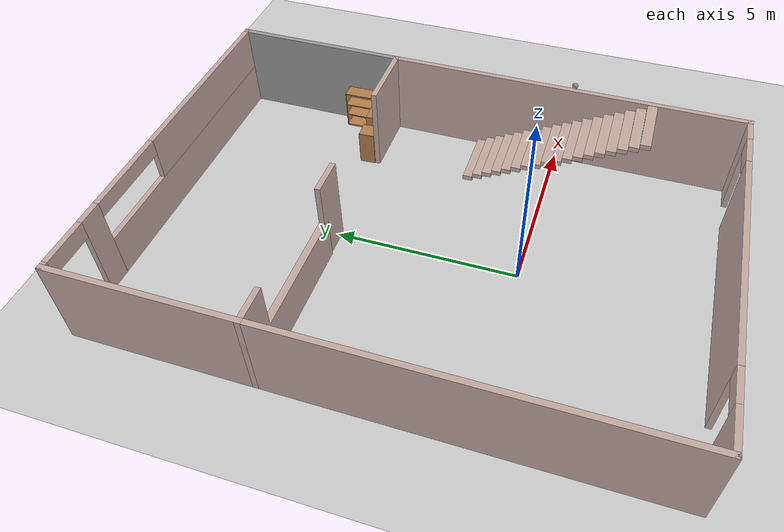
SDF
<sdf version="1.6">
 <world name="default">
  <model name="ground_plane">
   <static>1</static>
   <link name="link">
    <collision name="collision">
     <geometry><plane><normal>0 0 1</normal><size>100 100</size></plane></geometry>
     <surface>
      <contact><collide_bitmask>65535</collide_bitmask></contact>
      <friction><ode><mu>100</mu><mu2>50</mu2></ode></friction>
     </surface>
    </collision>
    <visual name="visual">
     <cast_shadows>0</cast_shadows>
     <geometry><plane><normal>0 0 1</normal><size>100 100</size></plane></geometry>
     <material>
      <script><uri>file://media/materials/scripts/gazebo.material</uri><name>Gazebo/Grey</name></script>
     </material>
    </visual>
   </link>
  </model>
  <model name="Living_room">
   <pose>0 2.425 0 0 -0 0</pose>
   <link name="Stairs_2">
    <visual name="Stairs_2_Visual_0">
     <pose>4.04837 -0.186051 0.069444 0 -0 0</pose>
     <geometry><box><size>1.735 0.275167 0.138889</size></box></geometry>
     <material>
      <script><uri>file://media/materials/scripts/gazebo.material</uri><name>Gazebo/Grey</name></script>
      <ambient>0.760784 0.662745 0.627451 1</ambient>
     </material>
     <meta><layer>0</layer></meta>
    </visual>
    <collision name="Stairs_2_Collision_0">
     <geometry><box><size>1.735 0.275167 0.138889</size></box></geometry>
     <pose>4.04837 -0.186051 0.069444 0 -0 0</pose>
    </collision>
    <visual name="Stairs_2_Visual_1">
     <pose>4.04837 -0.461218 0.208333 0 -0 0</pose>
     <geometry><box><size>1.735 0.275167 0.138889</size></box></geometry>
     <material>
      <script><uri>file://media/materials/scripts/gazebo.material</uri><name>Gazebo/Grey</name></script>
      <ambient>0.760784 0.662745 0.627451 1</ambient>
     </material>
     <meta><layer>0</layer></meta>
    </visual>
    <collision name="Stairs_2_Collision_1">
     <geometry><box><size>1.735 0.275167 0.138889</size></box></geometry>
     <pose>4.04837 -0.461218 0.208333 0 -0 0</pose>
    </collision>
    <visual name="Stairs_2_Visual_2">
     <pose>4.04837 -0.736385 0.347222 0 -0 0</pose>
     <geometry><box><size>1.735 0.275167 0.138889</size></box></geometry>
     <material>
      <script><uri>file://media/materials/scripts/gazebo.material</uri><name>Gazebo/Grey</name></script>
      <ambient>0.760784 0.662745 0.627451 1</ambient>
     </material>
     <meta><layer>0</layer></meta>
    </visual>
    <collision name="Stairs_2_Collision_2">
     <geometry><box><size>1.735 0.275167 0.138889</size></box></geometry>
     <pose>4.04837 -0.736385 0.347222 0 -0 0</pose>
    </collision>
    <visual name="Stairs_2_Visual_3">
     <pose>4.04837 -1.01155 0.486111 0 -0 0</pose>
     <geometry><box><size>1.735 0.275167 0.138889</size></box></geometry>
     <material>
      <script><uri>file://media/materials/scripts/gazebo.material</uri><name>Gazebo/Grey</name></script>
      <ambient>0.760784 0.662745 0.627451 1</ambient>
     </material>
     <meta><layer>0</layer></meta>
    </visual>
    <collision name="Stairs_2_Collision_3">
     <geometry><box><size>1.735 0.275167 0.138889</size></box></geometry>
     <pose>4.04837 -1.01155 0.486111 0 -0 0</pose>
    </collision>
    <visual name="Stairs_2_Visual_4">
     <pose>4.04837 -1.28672 0.625 0 -0 0</pose>
     <geometry><box><size>1.735 0.275167 0.138889</size></box></geometry>
     <material>
      <script><uri>file://media/materials/scripts/gazebo.material</uri><name>Gazebo/Grey</name></script>
      <ambient>0.760784 0.662745 0.627451 1</ambient>
     </material>
     <meta><layer>0</layer></meta>
    </visual>
    <collision name="Stairs_2_Collision_4">
     <geometry><box><size>1.735 0.275167 0.138889</size></box></geometry>
     <pose>4.04837 -1.28672 0.625 0 -0 0</pose>
    </collision>
    <visual name="Stairs_2_Visual_5">
     <pose>4.04837 -1.56188 0.763889 0 -0 0</pose>
     <geometry><box><size>1.735 0.275167 0.138889</size></box></geometry>
     <material>
      <script><uri>file://media/materials/scripts/gazebo.material</uri><name>Gazebo/Grey</name></script>
      <ambient>0.760784 0.662745 0.627451 1</ambient>
     </material>
     <meta><layer>0</layer></meta>
    </visual>
    <collision name="Stairs_2_Collision_5">
     <geometry><box><size>1.735 0.275167 0.138889</size></box></geometry>
     <pose>4.04837 -1.56188 0.763889 0 -0 0</pose>
    </collision>
    <visual name="Stairs_2_Visual_6">
     <pose>4.04837 -1.83705 0.902778 0 -0 0</pose>
     <geometry><box><size>1.735 0.275167 0.138889</size></box></geometry>
     <material>
      <script><uri>file://media/materials/scripts/gazebo.material</uri><name>Gazebo/Grey</name></script>
      <ambient>0.760784 0.662745 0.627451 1</ambient>
     </material>
     <meta><layer>0</layer></meta>
    </visual>
    <collision name="Stairs_2_Collision_6">
     <geometry><box><size>1.735 0.275167 0.138889</size></box></geometry>
     <pose>4.04837 -1.83705 0.902778 0 -0 0</pose>
    </collision>
    <visual name="Stairs_2_Visual_7">
     <pose>4.04837 -2.11222 1.04167 0 -0 0</pose>
     <geometry><box><size>1.735 0.275167 0.138889</size></box></geometry>
     <material>
      <script><uri>file://media/materials/scripts/gazebo.material</uri><name>Gazebo/Grey</name></script>
      <ambient>0.760784 0.662745 0.627451 1</ambient>
     </material>
     <meta><layer>0</layer></meta>
    </visual>
    <collision name="Stairs_2_Collision_7">
     <geometry><box><size>1.735 0.275167 0.138889</size></box></geometry>
     <pose>4.04837 -2.11222 1.04167 0 -0 0</pose>
    </collision>
    <visual name="Stairs_2_Visual_8">
     <pose>4.04837 -2.38739 1.18056 0 -0 0</pose>
     <geometry><box><size>1.735 0.275167 0.138889</size></box></geometry>
     <material>
      <script><uri>file://media/materials/scripts/gazebo.material</uri><name>Gazebo/Grey</name></script>
      <ambient>0.760784 0.662745 0.627451 1</ambient>
     </material>
     <meta><layer>0</layer></meta>
    </visual>
    <collision name="Stairs_2_Collision_8">
     <geometry><box><size>1.735 0.275167 0.138889</size></box></geometry>
     <pose>4.04837 -2.38739 1.18056 0 -0 0</pose>
    </collision>
    <visual name="Stairs_2_Visual_9">
     <pose>4.04837 -2.66255 1.31944 0 -0 0</pose>
     <geometry><box><size>1.735 0.275167 0.138889</size></box></geometry>
     <material>
      <script><uri>file://media/materials/scripts/gazebo.material</uri><name>Gazebo/Grey</name></script>
      <ambient>0.760784 0.662745 0.627451 1</ambient>
     </material>
     <meta><layer>0</layer></meta>
    </visual>
    <collision name="Stairs_2_Collision_9">
     <geometry><box><size>1.735 0.275167 0.138889</size></box></geometry>
     <pose>4.04837 -2.66255 1.31944 0 -0 0</pose>
    </collision>
    <visual name="Stairs_2_Visual_10">
     <pose>4.04837 -2.93772 1.45833 0 -0 0</pose>
     <geometry><box><size>1.735 0.275167 0.138889</size></box></geometry>
     <material>
      <script><uri>file://media/materials/scripts/gazebo.material</uri><name>Gazebo/Grey</name></script>
      <ambient>0.760784 0.662745 0.627451 1</ambient>
     </material>
     <meta><layer>0</layer></meta>
    </visual>
    <collision name="Stairs_2_Collision_10">
     <geometry><box><size>1.735 0.275167 0.138889</size></box></geometry>
     <pose>4.04837 -2.93772 1.45833 0 -0 0</pose>
    </collision>
    <visual name="Stairs_2_Visual_11">
     <pose>4.04837 -3.21288 1.59722 0 -0 0</pose>
     <geometry><box><size>1.735 0.275167 0.138889</size></box></geometry>
     <material>
      <script><uri>file://media/materials/scripts/gazebo.material</uri><name>Gazebo/Grey</name></script>
      <ambient>0.760784 0.662745 0.627451 1</ambient>
     </material>
     <meta><layer>0</layer></meta>
    </visual>
    <collision name="Stairs_2_Collision_11">
     <geometry><box><size>1.735 0.275167 0.138889</size></box></geometry>
     <pose>4.04837 -3.21288 1.59722 0 -0 0</pose>
    </collision>
    <visual name="Stairs_2_Visual_12">
     <pose>4.04837 -3.48805 1.73611 0 -0 0</pose>
     <geometry><box><size>1.735 0.275167 0.138889</size></box></geometry>
     <material>
      <script><uri>file://media/materials/scripts/gazebo.material</uri><name>Gazebo/Grey</name></script>
      <ambient>0.760784 0.662745 0.627451 1</ambient>
     </material>
     <meta><layer>0</layer></meta>
    </visual>
    <collision name="Stairs_2_Collision_12">
     <geometry><box><size>1.735 0.275167 0.138889</size></box></geometry>
     <pose>4.04837 -3.48805 1.73611 0 -0 0</pose>
    </collision>
    <visual name="Stairs_2_Visual_13">
     <pose>4.04837 -3.76322 1.875 0 -0 0</pose>
     <geometry><box><size>1.735 0.275167 0.138889</size></box></geometry>
     <material>
      <script><uri>file://media/materials/scripts/gazebo.material</uri><name>Gazebo/Grey</name></script>
      <ambient>0.760784 0.662745 0.627451 1</ambient>
     </material>
     <meta><layer>0</layer></meta>
    </visual>
    <collision name="Stairs_2_Collision_13">
     <geometry><box><size>1.735 0.275167 0.138889</size></box></geometry>
     <pose>4.04837 -3.76322 1.875 0 -0 0</pose>
    </collision>
    <visual name="Stairs_2_Visual_14">
     <pose>4.04837 -4.03838 2.01389 0 -0 0</pose>
     <geometry><box><size>1.735 0.275167 0.138889</size></box></geometry>
     <material>
      <script><uri>file://media/materials/scripts/gazebo.material</uri><name>Gazebo/Grey</name></script>
      <ambient>0.760784 0.662745 0.627451 1</ambient>
     </material>
     <meta><layer>0</layer></meta>
    </visual>
    <collision name="Stairs_2_Collision_14">
     <geometry><box><size>1.735 0.275167 0.138889</size></box></geometry>
     <pose>4.04837 -4.03838 2.01389 0 -0 0</pose>
    </collision>
    <visual name="Stairs_2_Visual_15">
     <pose>4.04837 -4.31355 2.15278 0 -0 0</pose>
     <geometry><box><size>1.735 0.275167 0.138889</size></box></geometry>
     <material>
      <script><uri>file://media/materials/scripts/gazebo.material</uri><name>Gazebo/Grey</name></script>
      <ambient>0.760784 0.662745 0.627451 1</ambient>
     </material>
     <meta><layer>0</layer></meta>
    </visual>
    <collision name="Stairs_2_Collision_15">
     <geometry><box><size>1.735 0.275167 0.138889</size></box></geometry>
     <pose>4.04837 -4.31355 2.15278 0 -0 0</pose>
    </collision>
    <visual name="Stairs_2_Visual_16">
     <pose>4.04837 -4.58872 2.29167 0 -0 0</pose>
     <geometry><box><size>1.735 0.275167 0.138889</size></box></geometry>
     <material>
      <script><uri>file://media/materials/scripts/gazebo.material</uri><name>Gazebo/Grey</name></script>
      <ambient>0.760784 0.662745 0.627451 1</ambient>
     </material>
     <meta><layer>0</layer></meta>
    </visual>
    <collision name="Stairs_2_Collision_16">
     <geometry><box><size>1.735 0.275167 0.138889</size></box></geometry>
     <pose>4.04837 -4.58872 2.29167 0 -0 0</pose>
    </collision>
    <visual name="Stairs_2_Visual_17">
     <pose>4.04837 -4.86388 2.43056 0 -0 0</pose>
     <geometry><box><size>1.735 0.275167 0.138889</size></box></geometry>
     <material>
      <script><uri>file://media/materials/scripts/gazebo.material</uri><name>Gazebo/Grey</name></script>
      <ambient>0.760784 0.662745 0.627451 1</ambient>
     </material>
     <meta><layer>0</layer></meta>
    </visual>
    <collision name="Stairs_2_Collision_17">
     <geometry><box><size>1.735 0.275167 0.138889</size></box></geometry>
     <pose>4.04837 -4.86388 2.43056 0 -0 0</pose>
    </collision>
   </link>
   <link name="Wall_10">
    <collision name="Wall_10_Collision">
     <geometry><box><size>3.55 0.2 1.25</size></box></geometry>
     <pose>0 0 0.625 0 -0 0</pose>
    </collision>
    <visual name="Wall_10_Visual">
     <pose>0 0 0.625 0 -0 0</pose>
     <geometry><box><size>3.55 0.2 1.25</size></box></geometry>
     <material>
      <script><uri>file://media/materials/scripts/gazebo.material</uri><name>Gazebo/Grey</name></script>
      <ambient>0.760784 0.662745 0.627451 1</ambient>
     </material>
     <meta><layer>0</layer></meta>
    </visual>
    <pose>-2.475 2.575 0 0 -0 0</pose>
   </link>
   <link name="Wall_11">
    <collision name="Wall_11_Collision">
     <geometry><box><size>1 0.15 2.5</size></box></geometry>
     <pose>0 0 1.25 0 -0 0</pose>
    </collision>
    <visual name="Wall_11_Visual">
     <pose>0 0 1.25 0 -0 0</pose>
     <geometry><box><size>1 0.15 2.5</size></box></geometry>
     <material>
      <script><uri>file://media/materials/scripts/gazebo.material</uri><name>Gazebo/Grey</name></script>
      <ambient>0.760784 0.662745 0.627451 1</ambient>
     </material>
     <meta><layer>0</layer></meta>
    </visual>
    <pose>-0.375 2.575 0 0 -0 0</pose>
   </link>
   <link name="Wall_18">
    <collision name="Wall_18_Collision">
     <geometry><box><size>2 0.15 2.5</size></box></geometry>
     <pose>0 0 1.25 0 -0 0</pose>
    </collision>
    <visual name="Wall_18_Visual">
     <pose>0 0 1.25 0 -0 0</pose>
     <geometry><box><size>2 0.15 2.5</size></box></geometry>
     <material>
      <script><uri>file://media/materials/scripts/gazebo.material</uri><name>Gazebo/Grey</name></script>
      <ambient>0.760784 0.662745 0.627451 1</ambient>
     </material>
     <meta><layer>0</layer></meta>
    </visual>
    <pose>4.075 2.575 0 0 -0 3.14159</pose>
   </link>
   <link name="Wall_2">
    <collision name="Wall_2_Collision">
     <geometry><box><size>10.15 0.15 2.5</size></box></geometry>
     <pose>0 0 1.25 0 -0 0</pose>
    </collision>
    <visual name="Wall_2_Visual">
     <pose>0 0 1.25 0 -0 0</pose>
     <geometry><box><size>10.15 0.15 2.5</size></box></geometry>
     <material>
      <script><uri>file://media/materials/scripts/gazebo.material</uri><name>Gazebo/Grey</name></script>
      <ambient>0.760784 0.662745 0.627451 1</ambient>
     </material>
     <meta><layer>0</layer></meta>
    </visual>
    <pose>-5 -2.425 0 0 0 -1.5708</pose>
   </link>
   <link name="Wall_20">
    <collision name="Wall_20_Collision">
     <geometry><box><size>5 0.15 2.5</size></box></geometry>
     <pose>0 0 1.25 0 -0 0</pose>
    </collision>
    <visual name="Wall_20_Visual">
     <pose>0 0 1.25 0 -0 0</pose>
     <geometry><box><size>5 0.15 2.5</size></box></geometry>
     <material>
      <script><uri>file://media/materials/scripts/gazebo.material</uri><name>Gazebo/Grey</name></script>
      <ambient>1 1 1 1</ambient>
     </material>
     <meta><layer>0</layer></meta>
    </visual>
    <pose>5 5 0 0 -0 1.5708</pose>
   </link>
   <link name="Wall_24">
    <collision name="Wall_24_Collision">
     <geometry><box><size>5 0.15 2.5</size></box></geometry>
     <pose>0 0 1.25 0 -0 0</pose>
    </collision>
    <visual name="Wall_24_Visual">
     <pose>0 0 1.25 0 -0 0</pose>
     <geometry><box><size>5 0.15 2.5</size></box></geometry>
     <material>
      <script><uri>file://media/materials/scripts/gazebo.material</uri><name>Gazebo/Grey</name></script>
      <ambient>0.760784 0.662745 0.627451 1</ambient>
     </material>
     <meta><layer>0</layer></meta>
    </visual>
    <pose>-5 5 0 0 -0 1.5708</pose>
   </link>
   <link name="Wall_28">
    <pose>0 7.425 0 0 -0 0</pose>
    <visual name="Wall_28_Visual_0">
     <pose>-4.96565 0 1.25 0 -0 0</pose>
     <geometry><box><size>0.218693 0.15 2.5</size></box></geometry>
     <material>
      <script><uri>file://media/materials/scripts/gazebo.material</uri><name>Gazebo/Grey</name></script>
      <ambient>0.760784 0.662745 0.627451 1</ambient>
     </material>
     <meta><layer>0</layer></meta>
    </visual>
    <collision name="Wall_28_Collision_0">
     <geometry><box><size>0.218693 0.15 2.5</size></box></geometry>
     <pose>-4.96565 0 1.25 0 -0 0</pose>
    </collision>
    <visual name="Wall_28_Visual_1">
     <pose>-3.23794 0 1.25 0 -0 0</pose>
     <geometry><box><size>0.662798 0.15 2.5</size></box></geometry>
     <material>
      <script><uri>file://media/materials/scripts/gazebo.material</uri><name>Gazebo/Grey</name></script>
      <ambient>0.760784 0.662745 0.627451 1</ambient>
     </material>
     <meta><layer>0</layer></meta>
    </visual>
    <collision name="Wall_28_Collision_1">
     <geometry><box><size>0.662798 0.15 2.5</size></box></geometry>
     <pose>-3.23794 0 1.25 0 -0 0</pose>
    </collision>
    <visual name="Wall_28_Visual_2">
     <pose>1.08423 0 0.625 0 -0 0</pose>
     <geometry><box><size>7.98154 0.15 1.25</size></box></geometry>
     <material>
      <script><uri>file://media/materials/scripts/gazebo.material</uri><name>Gazebo/Grey</name></script>
      <ambient>0.760784 0.662745 0.627451 1</ambient>
     </material>
     <meta><layer>0</layer></meta>
    </visual>
    <collision name="Wall_28_Collision_2">
     <geometry><box><size>7.98154 0.15 1.25</size></box></geometry>
     <pose>1.08423 0 0.625 0 -0 0</pose>
    </collision>
    <visual name="Wall_28_Visual_3">
     <pose>2.29323 0 1.875 0 -0 0</pose>
     <geometry><box><size>5.56354 0.15 1.25</size></box></geometry>
     <material>
      <script><uri>file://media/materials/scripts/gazebo.material</uri><name>Gazebo/Grey</name></script>
      <ambient>0.760784 0.662745 0.627451 1</ambient>
     </material>
     <meta><layer>0</layer></meta>
    </visual>
    <collision name="Wall_28_Collision_3">
     <geometry><box><size>5.56354 0.15 1.25</size></box></geometry>
     <pose>2.29323 0 1.875 0 -0 0</pose>
    </collision>
    <visual name="Wall_28_Visual_4">
     <pose>-4.21282 0 2.25 0 -0 0</pose>
     <geometry><box><size>1.28697 0.15 0.5</size></box></geometry>
     <material>
      <script><uri>file://media/materials/scripts/gazebo.material</uri><name>Gazebo/Grey</name></script>
      <ambient>0.760784 0.662745 0.627451 1</ambient>
     </material>
     <meta><layer>0</layer></meta>
    </visual>
    <collision name="Wall_28_Collision_4">
     <geometry><box><size>1.28697 0.15 0.5</size></box></geometry>
     <pose>-4.21282 0 2.25 0 -0 0</pose>
    </collision>
    <visual name="Wall_28_Visual_5">
     <pose>-1.69754 0 2.275 0 -0 0</pose>
     <geometry><box><size>2.418 0.15 0.45</size></box></geometry>
     <material>
      <script><uri>file://media/materials/scripts/gazebo.material</uri><name>Gazebo/Grey</name></script>
      <ambient>0.760784 0.662745 0.627451 1</ambient>
     </material>
     <meta><layer>0</layer></meta>
    </visual>
    <collision name="Wall_28_Collision_5">
     <geometry><box><size>2.418 0.15 0.45</size></box></geometry>
     <pose>-1.69754 0 2.275 0 -0 0</pose>
    </collision>
   </link>
   <link name="Wall_3">
    <pose>0 -7.425 0 0 -0 0</pose>
    <visual name="Wall_3_Visual_0">
     <pose>-4.48861 0 1.25 0 -0 0</pose>
     <geometry><box><size>1.17278 0.15 2.5</size></box></geometry>
     <material>
      <script><uri>file://media/materials/scripts/gazebo.material</uri><name>Gazebo/Grey</name></script>
      <ambient>0.760784 0.662745 0.627451 1</ambient>
     </material>
     <meta><layer>0</layer></meta>
    </visual>
    <collision name="Wall_3_Collision_0">
     <geometry><box><size>1.17278 0.15 2.5</size></box></geometry>
     <pose>-4.48861 0 1.25 0 -0 0</pose>
    </collision>
    <visual name="Wall_3_Visual_1">
     <pose>0.186013 0 1.25 0 -0 0</pose>
     <geometry><box><size>6.37646 0.15 2.5</size></box></geometry>
     <material>
      <script><uri>file://media/materials/scripts/gazebo.material</uri><name>Gazebo/Grey</name></script>
      <ambient>0.760784 0.662745 0.627451 1</ambient>
     </material>
     <meta><layer>0</layer></meta>
    </visual>
    <collision name="Wall_3_Collision_1">
     <geometry><box><size>6.37646 0.15 2.5</size></box></geometry>
     <pose>0.186013 0 1.25 0 -0 0</pose>
    </collision>
    <visual name="Wall_3_Visual_2">
     <pose>4.67462 0 1.25 0 -0 0</pose>
     <geometry><box><size>0.800759 0.15 2.5</size></box></geometry>
     <material>
      <script><uri>file://media/materials/scripts/gazebo.material</uri><name>Gazebo/Grey</name></script>
      <ambient>0.760784 0.662745 0.627451 1</ambient>
     </material>
     <meta><layer>0</layer></meta>
    </visual>
    <collision name="Wall_3_Collision_2">
     <geometry><box><size>0.800759 0.15 2.5</size></box></geometry>
     <pose>4.67462 0 1.25 0 -0 0</pose>
    </collision>
    <visual name="Wall_3_Visual_3">
     <pose>-3.45221 0 2.25 0 -0 0</pose>
     <geometry><box><size>0.9 0.15 0.5</size></box></geometry>
     <material>
      <script><uri>file://media/materials/scripts/gazebo.material</uri><name>Gazebo/Grey</name></script>
      <ambient>0.760784 0.662745 0.627451 1</ambient>
     </material>
     <meta><layer>0</layer></meta>
    </visual>
    <collision name="Wall_3_Collision_3">
     <geometry><box><size>0.9 0.15 0.5</size></box></geometry>
     <pose>-3.45221 0 2.25 0 -0 0</pose>
    </collision>
    <visual name="Wall_3_Visual_4">
     <pose>3.82424 0 2.25 0 -0 0</pose>
     <geometry><box><size>0.9 0.15 0.5</size></box></geometry>
     <material>
      <script><uri>file://media/materials/scripts/gazebo.material</uri><name>Gazebo/Grey</name></script>
      <ambient>0.760784 0.662745 0.627451 1</ambient>
     </material>
     <meta><layer>0</layer></meta>
    </visual>
    <collision name="Wall_3_Collision_4">
     <geometry><box><size>0.9 0.15 0.5</size></box></geometry>
     <pose>3.82424 0 2.25 0 -0 0</pose>
    </collision>
   </link>
   <link name="Wall_4">
    <collision name="Wall_4_Collision">
     <geometry><box><size>10.15 0.15 2.5</size></box></geometry>
     <pose>0 0 1.25 0 -0 0</pose>
    </collision>
    <visual name="Wall_4_Visual">
     <pose>0 0 1.25 0 -0 0</pose>
     <geometry><box><size>10.15 0.15 2.5</size></box></geometry>
     <material>
      <script><uri>file://media/materials/scripts/gazebo.material</uri><name>Gazebo/Grey</name></script>
      <ambient>0.760784 0.662745 0.627451 1</ambient>
     </material>
     <meta><layer>0</layer></meta>
    </visual>
    <pose>5 -2.425 0 0 -0 1.5708</pose>
   </link>
   <link name="Wall_9">
    <collision name="Wall_9_Collision">
     <geometry><box><size>1 0.15 2.5</size></box></geometry>
     <pose>0 0 1.25 0 -0 0</pose>
    </collision>
    <visual name="Wall_9_Visual">
     <pose>0 0 1.25 0 -0 0</pose>
     <geometry><box><size>1 0.15 2.5</size></box></geometry>
     <material>
      <script><uri>file://media/materials/scripts/gazebo.material</uri><name>Gazebo/Grey</name></script>
      <ambient>0.760784 0.662745 0.627451 1</ambient>
     </material>
     <meta><layer>0</layer></meta>
    </visual>
    <pose>-4.575 2.575 0 0 -0 0</pose>
   </link>
   <static>1</static>
  </model>
  <model name="cabinet">
   <static>1</static>
   <link name="cabinet_bottom_plate">
    <inertial>
     <pose>0 0 -1 0 -0 0</pose>
     <inertia><ixx>2.05</ixx><ixy>0</ixy><ixz>0</ixz><iyy>2.05</iyy><iyz>0</iyz><izz>2.05</izz></inertia>
     <mass>25</mass>
    </inertial>
    <collision name="cabinet_bottom_plate_geom">
     <pose>0 0 0.01 0 -0 0</pose>
     <geometry><box><size>0.45 0.45 0.02</size></box></geometry>
    </collision>
    <visual name="cabinet_bottom_plate_geom_visual">
     <pose>0 0 0.01 0 -0 0</pose>
     <geometry><box><size>0.45 0.45 0.02</size></box></geometry>
     <material>
      <script><uri>file://media/materials/scripts/gazebo.material</uri><name>Gazebo/Wood</name></script>
     </material>
    </visual>
    <collision name="cabinet_bottom_plate_geom_cabinet_back_plate">
     <pose>0.235 0 0.51 0 -0 0</pose>
     <geometry><box><size>0.02 0.45 1.02</size></box></geometry>
    </collision>
    <visual name="cabinet_bottom_plate_geom_cabinet_back_plate_visual">
     <pose>0.235 0 0.51 0 -0 0</pose>
     <geometry><box><size>0.02 0.45 1.02</size></box></geometry>
     <material>
      <script><uri>file://media/materials/scripts/gazebo.material</uri><name>Gazebo/Wood</name></script>
     </material>
    </visual>
    <collision name="cabinet_bottom_plate_geom_cabinet_left_plate">
     <pose>0 0.235 0.51 0 -0 0</pose>
     <geometry><box><size>0.45 0.02 1.02</size></box></geometry>
    </collision>
    <visual name="cabinet_bottom_plate_geom_cabinet_left_plate_visual">
     <pose>0 0.235 0.51 0 -0 0</pose>
     <geometry><box><size>0.45 0.02 1.02</size></box></geometry>
     <material>
      <script><uri>file://media/materials/scripts/gazebo.material</uri><name>Gazebo/Wood</name></script>
     </material>
    </visual>
    <collision name="cabinet_bottom_plate_geom_cabinet_middle_plate">
     <pose>0 0 0.51 0 -0 0</pose>
     <geometry><box><size>0.45 0.45 0.02</size></box></geometry>
    </collision>
    <visual name="cabinet_bottom_plate_geom_cabinet_middle_plate_visual">
     <pose>0 0 0.51 0 -0 0</pose>
     <geometry><box><size>0.45 0.45 0.02</size></box></geometry>
     <material>
      <script><uri>file://media/materials/scripts/gazebo.material</uri><name>Gazebo/Wood</name></script>
     </material>
    </visual>
    <collision name="cabinet_bottom_plate_geom_cabinet_right_plate">
     <pose>0 -0.235 0.51 0 -0 0</pose>
     <geometry><box><size>0.45 0.02 1.02</size></box></geometry>
    </collision>
    <visual name="cabinet_bottom_plate_geom_cabinet_right_plate_visual">
     <pose>0 -0.235 0.51 0 -0 0</pose>
     <geometry><box><size>0.45 0.02 1.02</size></box></geometry>
     <material>
      <script><uri>file://media/materials/scripts/gazebo.material</uri><name>Gazebo/Wood</name></script>
     </material>
    </visual>
    <collision name="cabinet_bottom_plate_geom_cabinet_top_plate">
     <pose>0 0 1.01 0 -0 0</pose>
     <geometry><box><size>0.45 0.45 0.02</size></box></geometry>
    </collision>
    <visual name="cabinet_bottom_plate_geom_cabinet_top_plate_visual">
     <pose>0 0 1.01 0 -0 0</pose>
     <geometry><box><size>0.45 0.45 0.02</size></box></geometry>
     <material>
      <script><uri>file://media/materials/scripts/gazebo.material</uri><name>Gazebo/Wood</name></script>
     </material>
    </visual>
   </link>
   <pose>3.29061 5.31779 0 0 0 -1.51731</pose>
  </model>
  <model name="bookshelf_clone_clone_1">
   <static>1</static>
   <link name="link">
    <inertial><mass>1</mass></inertial>
    <collision name="back">
     <pose>0 0.005 0.6 0 -0 0</pose>
     <geometry><box><size>0.9 0.01 1.2</size></box></geometry>
    </collision>
    <visual name="visual1">
     <pose>0 0.005 0.6 0 -0 0</pose>
     <geometry><box><size>0.9 0.01 1.2</size></box></geometry>
     <material>
      <script><uri>file://media/materials/scripts/gazebo.material</uri><name>Gazebo/Wood</name></script>
     </material>
    </visual>
    <collision name="left_side">
     <pose>0.45 -0.195 0.6 0 -0 0</pose>
     <geometry><box><size>0.02 0.4 1.2</size></box></geometry>
    </collision>
    <visual name="visual2">
     <pose>0.45 -0.195 0.6 0 -0 0</pose>
     <geometry><box><size>0.02 0.4 1.2</size></box></geometry>
     <material>
      <script><uri>file://media/materials/scripts/gazebo.material</uri><name>Gazebo/Wood</name></script>
     </material>
    </visual>
    <collision name="right_side">
     <pose>-0.45 -0.195 0.6 0 -0 0</pose>
     <geometry><box><size>0.02 0.4 1.2</size></box></geometry>
    </collision>
    <visual name="visual3">
     <pose>-0.45 -0.195 0.6 0 -0 0</pose>
     <geometry><box><size>0.02 0.4 1.2</size></box></geometry>
     <material>
      <script><uri>file://media/materials/scripts/gazebo.material</uri><name>Gazebo/Wood</name></script>
     </material>
    </visual>
    <collision name="bottom">
     <pose>0 -0.195 0.03 0 -0 0</pose>
     <geometry><box><size>0.88 0.4 0.06</size></box></geometry>
    </collision>
    <visual name="visual4">
     <pose>0 -0.195 0.03 0 -0 0</pose>
     <geometry><box><size>0.88 0.4 0.06</size></box></geometry>
     <material>
      <script><uri>file://media/materials/scripts/gazebo.material</uri><name>Gazebo/Wood</name></script>
     </material>
    </visual>
    <collision name="top">
     <pose>0 -0.195 1.19 0 -0 0</pose>
     <geometry><box><size>0.88 0.4 0.02</size></box></geometry>
    </collision>
    <visual name="visual5">
     <pose>0 -0.195 1.19 0 -0 0</pose>
     <geometry><box><size>0.88 0.4 0.02</size></box></geometry>
     <material>
      <script><uri>file://media/materials/scripts/gazebo.material</uri><name>Gazebo/Wood</name></script>
     </material>
    </visual>
    <collision name="low_shelf">
     <pose>0 -0.195 0.43 0 -0 0</pose>
     <geometry><box><size>0.88 0.4 0.02</size></box></geometry>
    </collision>
    <visual name="visual6">
     <pose>0 -0.195 0.43 0 -0 0</pose>
     <geometry><box><size>0.88 0.4 0.02</size></box></geometry>
     <material>
      <script><uri>file://media/materials/scripts/gazebo.material</uri><name>Gazebo/Wood</name></script>
     </material>
    </visual>
    <collision name="high_shelf">
     <pose>0 -0.195 0.8 0 -0 0</pose>
     <geometry><box><size>0.88 0.4 0.02</size></box></geometry>
    </collision>
    <visual name="visual7">
     <pose>0 -0.195 0.8 0 -0 0</pose>
     <geometry><box><size>0.88 0.4 0.02</size></box></geometry>
     <material>
      <script><uri>file://media/materials/scripts/gazebo.material</uri><name>Gazebo/Wood</name></script>
     </material>
    </visual>
   </link>
   <pose>4.91854 6.07126 0 0 0 -1.55013</pose>
  </model>
  <model name="bookshelf_clone_0">
   <static>1</static>
   <link name="link">
    <inertial><mass>1</mass></inertial>
    <collision name="back">
     <pose>0 0.005 0.6 0 -0 0</pose>
     <geometry><box><size>0.9 0.01 1.2</size></box></geometry>
    </collision>
    <visual name="visual1">
     <pose>0 0.005 0.6 0 -0 0</pose>
     <geometry><box><size>0.9 0.01 1.2</size></box></geometry>
     <material>
      <script><uri>file://media/materials/scripts/gazebo.material</uri><name>Gazebo/Wood</name></script>
     </material>
    </visual>
    <collision name="left_side">
     <pose>0.45 -0.195 0.6 0 -0 0</pose>
     <geometry><box><size>0.02 0.4 1.2</size></box></geometry>
    </collision>
    <visual name="visual2">
     <pose>0.45 -0.195 0.6 0 -0 0</pose>
     <geometry><box><size>0.02 0.4 1.2</size></box></geometry>
     <material>
      <script><uri>file://media/materials/scripts/gazebo.material</uri><name>Gazebo/Wood</name></script>
     </material>
    </visual>
    <collision name="right_side">
     <pose>-0.45 -0.195 0.6 0 -0 0</pose>
     <geometry><box><size>0.02 0.4 1.2</size></box></geometry>
    </collision>
    <visual name="visual3">
     <pose>-0.45 -0.195 0.6 0 -0 0</pose>
     <geometry><box><size>0.02 0.4 1.2</size></box></geometry>
     <material>
      <script><uri>file://media/materials/scripts/gazebo.material</uri><name>Gazebo/Wood</name></script>
     </material>
    </visual>
    <collision name="bottom">
     <pose>0 -0.195 0.03 0 -0 0</pose>
     <geometry><box><size>0.88 0.4 0.06</size></box></geometry>
    </collision>
    <visual name="visual4">
     <pose>0 -0.195 0.03 0 -0 0</pose>
     <geometry><box><size>0.88 0.4 0.06</size></box></geometry>
     <material>
      <script><uri>file://media/materials/scripts/gazebo.material</uri><name>Gazebo/Wood</name></script>
     </material>
    </visual>
    <collision name="top">
     <pose>0 -0.195 1.19 0 -0 0</pose>
     <geometry><box><size>0.88 0.4 0.02</size></box></geometry>
    </collision>
    <visual name="visual5">
     <pose>0 -0.195 1.19 0 -0 0</pose>
     <geometry><box><size>0.88 0.4 0.02</size></box></geometry>
     <material>
      <script><uri>file://media/materials/scripts/gazebo.material</uri><name>Gazebo/Wood</name></script>
     </material>
    </visual>
    <collision name="low_shelf">
     <pose>0 -0.195 0.43 0 -0 0</pose>
     <geometry><box><size>0.88 0.4 0.02</size></box></geometry>
    </collision>
    <visual name="visual6">
     <pose>0 -0.195 0.43 0 -0 0</pose>
     <geometry><box><size>0.88 0.4 0.02</size></box></geometry>
     <material>
      <script><uri>file://media/materials/scripts/gazebo.material</uri><name>Gazebo/Wood</name></script>
     </material>
    </visual>
    <collision name="high_shelf">
     <pose>0 -0.195 0.8 0 -0 0</pose>
     <geometry><box><size>0.88 0.4 0.02</size></box></geometry>
    </collision>
    <visual name="visual7">
     <pose>0 -0.195 0.8 0 -0 0</pose>
     <geometry><box><size>0.88 0.4 0.02</size></box></geometry>
     <material>
      <script><uri>file://media/materials/scripts/gazebo.material</uri><name>Gazebo/Wood</name></script>
     </material>
    </visual>
   </link>
   <pose>4.09628 5.13853 0 0 0 -3.10916</pose>
  </model>
  <model name="my_ball">
   <link name="link_0">
    <inertial>
     <mass>1</mass>
     <inertia><ixx>0.1</ixx><ixy>0</ixy><ixz>0</ixz><iyy>0.1</iyy><iyz>0</iyz><izz>0.1</izz></inertia>
    </inertial>
    <visual name="visual">
     <geometry><sphere><radius>0.1</radius></sphere></geometry>
     <material>
      <lighting>1</lighting>
      <script><uri>file://media/materials/scripts/gazebo.material</uri><name>Gazebo/Grey</name></script>
      <shader type="pixel"><normal_map>__default__</normal_map></shader>
      <ambient>1 1 1 1</ambient>
      <diffuse>1 1 1 1</diffuse>
      <specular>1 1 1 1</specular>
      <emissive>1 1 1 1</emissive>
     </material>
    </visual>
    <collision name="collision">
     <geometry><sphere><radius>0.1</radius></sphere></geometry>
     <surface>
      <friction>
       <ode><mu>1</mu><mu2>1</mu2><fdir1>0 0 0</fdir1><slip1>0</slip1><slip2>0</slip2></ode>
       <torsional>
        <coefficient>1</coefficient>
        <patch_radius>0</patch_radius>
        <surface_radius>0</surface_radius>
        <use_patch_radius>1</use_patch_radius>
        <ode><slip>0</slip></ode>
       </torsional>
      </friction>
      <bounce><restitution_coefficient>0</restitution_coefficient><threshold>1e+06</threshold></bounce>
      <contact>
       <collide_without_contact>0</collide_without_contact>
       <collide_without_contact_bitmask>1</collide_without_contact_bitmask>
       <collide_bitmask>1</collide_bitmask>
       <ode>
        <soft_cfm>0</soft_cfm>
        <soft_erp>0.2</soft_erp>
        <kp>1e+13</kp>
        <kd>1</kd>
        <max_vel>0.01</max_vel>
        <min_depth>0</min_depth>
       </ode>
       <bullet>
        <split_impulse>1</split_impulse>
        <split_impulse_penetration_threshold>-0.01</split_impulse_penetration_threshold>
        <soft_cfm>0</soft_cfm>
        <soft_erp>0.2</soft_erp>
        <kp>1e+13</kp>
        <kd>1</kd>
       </bullet>
      </contact>
     </surface>
    </collision>
   </link>
   <static>0</static>
   <pose>8.57847 0.006528 0.1 0 -0 0</pose>
  </model>
 </world>
</sdf>
